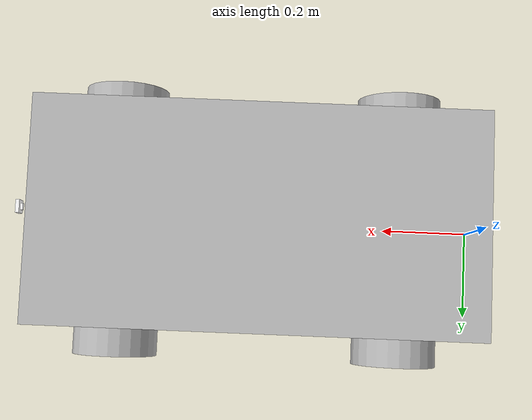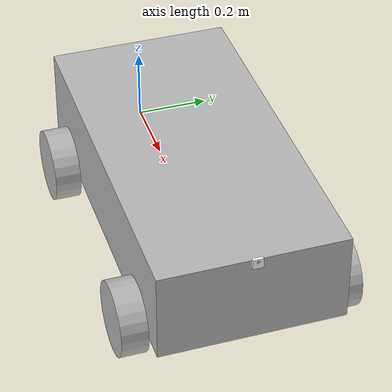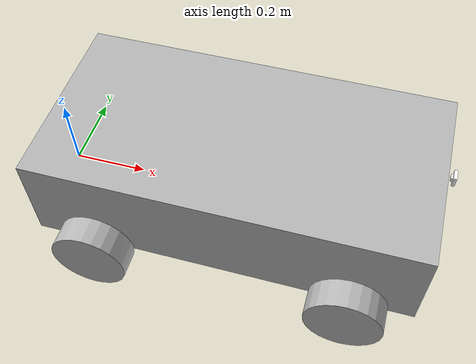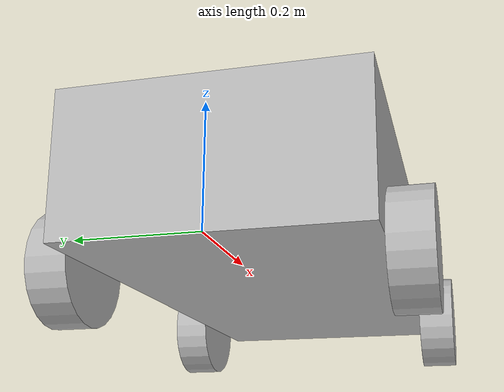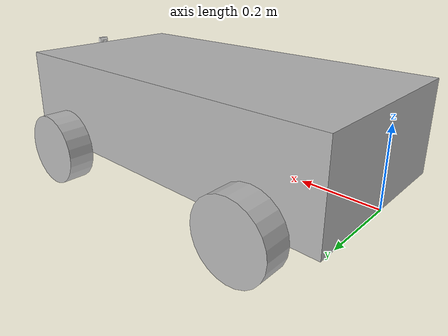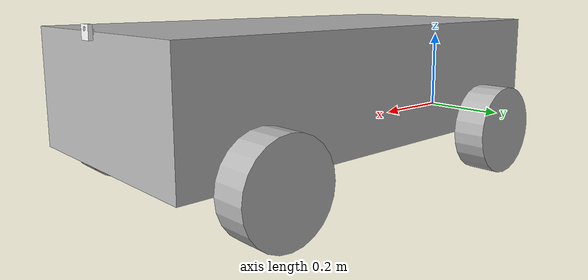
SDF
<?xml version="1.0" encoding="UTF-8"?>
<sdf version='1.10'>
  <model name='buggy'>
    <self_collide>false</self_collide>
    <static>false</static>

    <link name="base_footprint"/>

    <joint name="base_joint" type="fixed">
      <parent>base_footprint</parent>
      <child>base_link</child>
      <pose>0.0 0.0 -0.04 0 0 0</pose>
    </joint>

    <link name='base_link'>
      <inertial>
        <pose>0.5 0 0.125 0 0 0</pose>
        <mass>1</mass>
        <inertia>
          <ixx>0.026041666666666661</ixx>
          <ixy>0</ixy>
          <ixz>0</ixz>
          <iyy>0.08854166666666663</iyy>
          <iyz>0</iyz>
          <izz>0.1041666666666666</izz>
        </inertia>
      </inertial>
      <collision name='base_link_fixed_joint_lump__chassis_link_collision'>
        <pose>0.5 0 0.125 0 0 0</pose>
        <geometry>
          <box>
            <size>1 0.5 0.25</size>
          </box>
        </geometry>
      </collision>
      <visual name='base_link_fixed_joint_lump__chassis_link_visual'>
        <pose>0.5 0 0.125 0 0 0</pose>
        <geometry>
          <box>
            <size>1 0.5 0.25</size>
          </box>
        </geometry>
      </visual>
    </link>
    <joint name='chassis_to_left_wheel1_joint' type='revolute'>
      <pose relative_to='base_link'>0.83333333333333326 0.2857142857142857 0 -1.5707963267948959 0 0</pose>
      <parent>base_link</parent>
      <child>left_wheel1_link</child>
      <axis>
        <xyz>0 0 1</xyz>
        <limit>
          <lower>-inf</lower>
          <upper>inf</upper>
        </limit>
        <dynamics>
          <spring_reference>0</spring_reference>
          <spring_stiffness>0</spring_stiffness>
        </dynamics>
      </axis>
    </joint>
    <link name='left_wheel1_link'>
      <pose relative_to='chassis_to_left_wheel1_joint'>0 0 0 0 0 0</pose>
      <inertial>
        <pose>0 0 0 0 0 0</pose>
        <mass>0.25</mass>
        <inertia>
          <ixx>0.00073129251700680274</ixx>
          <ixy>0</ixy>
          <ixz>0</ixz>
          <iyy>0.00073129251700680274</iyy>
          <iyz>0</iyz>
          <izz>0.00125</izz>
        </inertia>
      </inertial>
      <collision name='left_wheel1_link_collision'>
        <pose>0 0 0 0 0 0</pose>
        <geometry>
          <cylinder>
            <length>0.071428571428571425</length>
            <radius>0.10000000000000001</radius>
          </cylinder>
        </geometry>
      </collision>
      <visual name='left_wheel1_link_visual'>
        <pose>0 0 0 0 0 0</pose>
        <geometry>
          <cylinder>
            <length>0.071428571428571425</length>
            <radius>0.10000000000000001</radius>
          </cylinder>
        </geometry>
      </visual>
    </link>
    <joint name='chassis_to_left_wheel2_joint' type='revolute'>
      <pose relative_to='base_link'>0.16666666666666671 0.2857142857142857 0 -1.5707963267948959 0 0</pose>
      <parent>base_link</parent>
      <child>left_wheel2_link</child>
      <axis>
        <xyz>0 0 1</xyz>
        <limit>
          <lower>-inf</lower>
          <upper>inf</upper>
        </limit>
        <dynamics>
          <spring_reference>0</spring_reference>
          <spring_stiffness>0</spring_stiffness>
        </dynamics>
      </axis>
    </joint>
    <link name='left_wheel2_link'>
      <pose relative_to='chassis_to_left_wheel2_joint'>0 0 0 0 0 0</pose>
      <inertial>
        <pose>0 0 0 0 0 0</pose>
        <mass>0.25</mass>
        <inertia>
          <ixx>0.00073129251700680274</ixx>
          <ixy>0</ixy>
          <ixz>0</ixz>
          <iyy>0.00073129251700680274</iyy>
          <iyz>0</iyz>
          <izz>0.00125</izz>
        </inertia>
      </inertial>
      <collision name='left_wheel2_link_collision'>
        <pose>0 0 0 0 0 0</pose>
        <geometry>
          <cylinder>
            <length>0.071428571428571425</length>
            <radius>0.10000000000000001</radius>
          </cylinder>
        </geometry>
      </collision>
      <visual name='left_wheel2_link_visual'>
        <pose>0 0 0 0 0 0</pose>
        <geometry>
          <cylinder>
            <length>0.071428571428571425</length>
            <radius>0.10000000000000001</radius>
          </cylinder>
        </geometry>
      </visual>
    </link>
    <joint name='chassis_to_right_wheel1_joint' type='revolute'>
      <pose relative_to='base_link'>0.83333333333333326 -0.2857142857142857 0 1.5707963267948959 0 0</pose>
      <parent>base_link</parent>
      <child>right_wheel1_link</child>
      <axis>
        <xyz>0 0 -1</xyz>
        <limit>
          <lower>-inf</lower>
          <upper>inf</upper>
        </limit>
        <dynamics>
          <spring_reference>0</spring_reference>
          <spring_stiffness>0</spring_stiffness>
        </dynamics>
      </axis>
    </joint>
    <link name='right_wheel1_link'>
      <pose relative_to='chassis_to_right_wheel1_joint'>0 0 0 0 0 0</pose>
      <inertial>
        <pose>0 0 0 0 0 0</pose>
        <mass>0.25</mass>
        <inertia>
          <ixx>0.00073129251700680274</ixx>
          <ixy>0</ixy>
          <ixz>0</ixz>
          <iyy>0.00073129251700680274</iyy>
          <iyz>0</iyz>
          <izz>0.00125</izz>
        </inertia>
      </inertial>
      <collision name='right_wheel1_link_collision'>
        <pose>0 0 0 0 0 0</pose>
        <geometry>
          <cylinder>
            <length>0.071428571428571425</length>
            <radius>0.10000000000000001</radius>
          </cylinder>
        </geometry>
      </collision>
      <visual name='right_wheel1_link_visual'>
        <pose>0 0 0 0 0 0</pose>
        <geometry>
          <cylinder>
            <length>0.071428571428571425</length>
            <radius>0.10000000000000001</radius>
          </cylinder>
        </geometry>
      </visual>
    </link>
    <joint name='chassis_to_right_wheel2_joint' type='revolute'>
      <pose relative_to='base_link'>0.16666666666666671 -0.2857142857142857 0 1.5707963267948959 0 0</pose>
      <parent>base_link</parent>
      <child>right_wheel2_link</child>
      <axis>
        <xyz>0 0 -1</xyz>
        <limit>
          <lower>-inf</lower>
          <upper>inf</upper>
        </limit>
        <dynamics>
          <spring_reference>0</spring_reference>
          <spring_stiffness>0</spring_stiffness>
        </dynamics>
      </axis>
    </joint>
    <link name='right_wheel2_link'>
      <pose relative_to='chassis_to_right_wheel2_joint'>0 0 0 0 0 0</pose>
      <inertial>
        <pose>0 0 0 0 0 0</pose>
        <mass>0.25</mass>
        <inertia>
          <ixx>0.00073129251700680274</ixx>
          <ixy>0</ixy>
          <ixz>0</ixz>
          <iyy>0.00073129251700680274</iyy>
          <iyz>0</iyz>
          <izz>0.00125</izz>
        </inertia>
      </inertial>
      <collision name='right_wheel2_link_collision'>
        <pose>0 0 0 0 0 0</pose>
        <geometry>
          <cylinder>
            <length>0.071428571428571425</length>
            <radius>0.10000000000000001</radius>
          </cylinder>
        </geometry>
      </collision>
      <visual name='right_wheel2_link_visual'>
        <pose>0 0 0 0 0 0</pose>
        <geometry>
          <cylinder>
            <length>0.071428571428571425</length>
            <radius>0.10000000000000001</radius>
          </cylinder>
        </geometry>
      </visual>
    </link>

<!-- camera stuff -->
    <joint name="camera_joint" type="fixed">
      <parent>base_link</parent>
      <child>camera_link</child>
    </joint>
    <link name="camera_link">
      <pose>1.0 0 0.25 0 0 0</pose>
      <inertial>
        <pose>0 0 0 0 0 0</pose>
        <mass>0.01</mass>
        <inertia>
          <ixx>0.00000130666</ixx>
          <ixy>0</ixy>
          <ixz>0</ixz>
          <iyy>0.00000130666</iyy>
          <iyz>0</iyz>
          <izz>0.00000130666</izz>
        </inertia>
      </inertial>
      <visual name="camera_housing">
        <pose>.013 0 0 0 0 0</pose>
        <geometry>
          <box>
            <size>.008 .028 .028</size>
          </box>
        </geometry>
        <material>
          <diffuse>1.0 1.0 1.0</diffuse>
          <specular>1.0 1.0 1.0</specular>
        </material>
      </visual>
      <visual name="camera_housing_mount">
        <pose>.008 0 0 0 0 0</pose>
        <geometry>
          <box>
            <size>.008 .014 .01</size>
          </box>
        </geometry>
        <material>
          <diffuse>1.0 1.0 1.0</diffuse>
          <specular>1.0 1.0 1.0</specular>
        </material>
      </visual>
      <visual name="camera_lens">
        <pose>.016 0 .006 0 1.57079632679 0</pose>
        <geometry>
          <cylinder>
            <length>0.003</length>
            <radius>0.004</radius>
          </cylinder>
        </geometry>
      </visual>
      <sensor name="ov5645" type="camera">
        <pose>.016 0 .006 0 0 0</pose>
        <camera>
          <image>
            <width>320</width>
            <height>240</height>
            <format>B8G8R8</format>
          </image>
          <clip>
            <near>0.05</near>
            <far>100</far>
          </clip>
          <optical_frame_id>camera_link_optical</optical_frame_id>
        </camera>
        <always_on>1</always_on>
        <update_rate>30</update_rate>
        <visualize>true</visualize>
        <topic>/camera/image_raw</topic>
      </sensor>
    </link>

<plugin
    filename="gz-sim-diff-drive-system"
    name="gz::sim::systems::DiffDrive">
    <left_joint>chassis_to_left_wheel1_joint</left_joint>
    <right_joint>chassis_to_right_wheel1_joint</right_joint>
    <left_joint>chassis_to_left_wheel2_joint</left_joint>
    <right_joint>chassis_to_right_wheel2_joint</right_joint>
    <wheel_separation>1.2</wheel_separation>
    <wheel_radius>0.4</wheel_radius>
    <odom_publish_frequency>1</odom_publish_frequency>
    <topic>cmd_vel</topic>
</plugin>

  </model>
</sdf>
